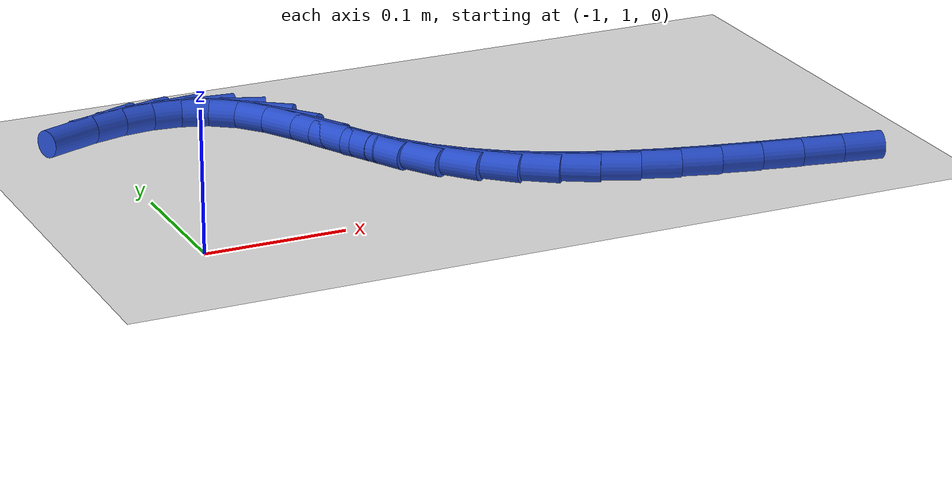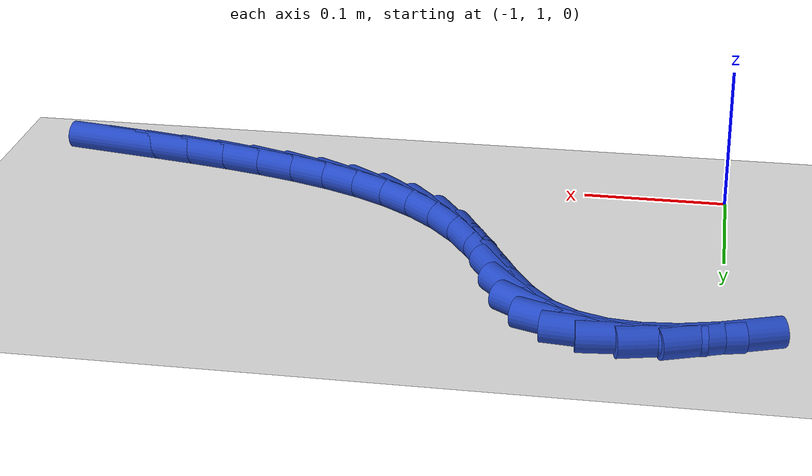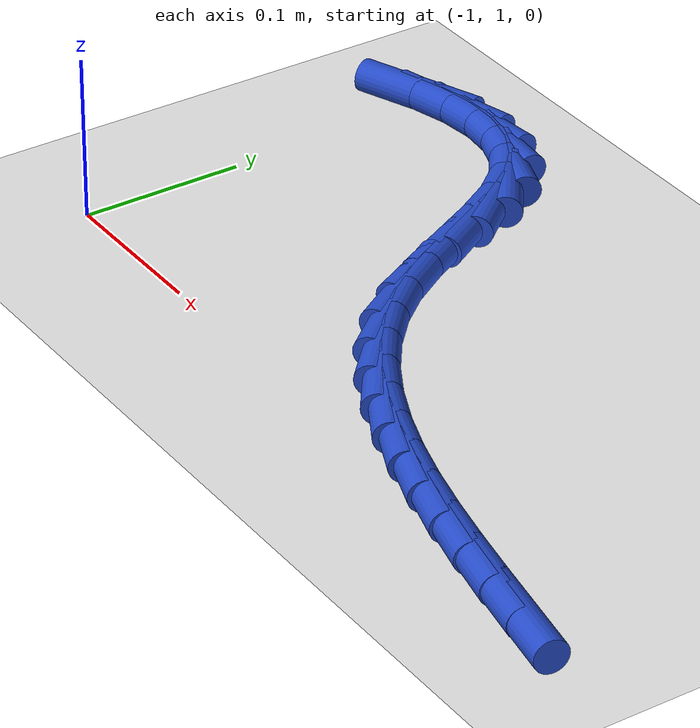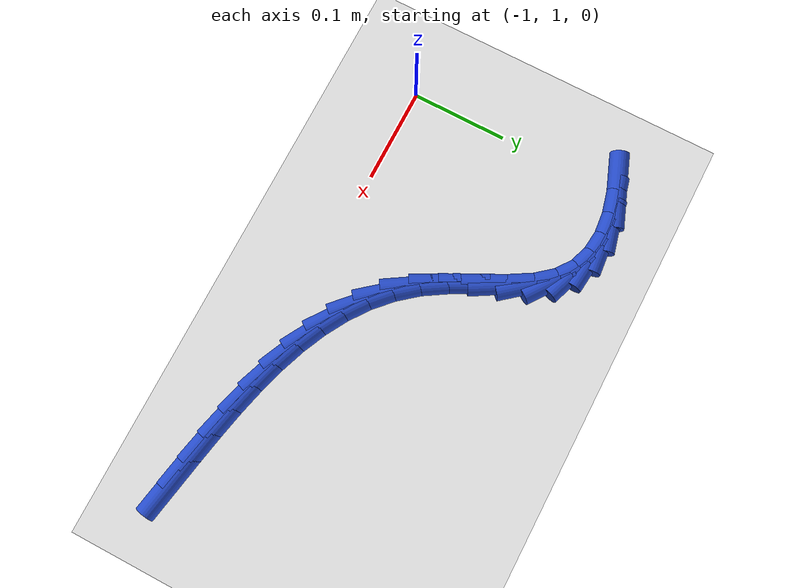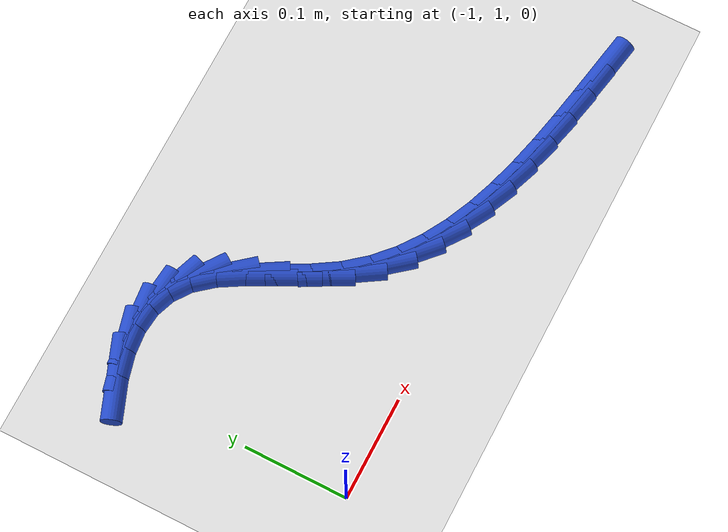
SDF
<sdf version="1.6">
 <world name="default">
  <model name="ground_plane">
   <static>1</static>
   <link name="link">
    <collision name="collision">
     <geometry><plane><normal>0 0 1</normal><size>100 100</size></plane></geometry>
     <surface><friction><ode><mu>100</mu><mu2>50</mu2></ode></friction></surface>
    </collision>
    <visual name="visual">
     <cast_shadows>0</cast_shadows>
     <geometry><plane><normal>0 0 1</normal><size>100 100</size></plane></geometry>
     <material>
      <script><uri>file://media/materials/scripts/gazebo.material</uri><name>Gazebo/WhiteGlow</name></script>
     </material>
    </visual>
   </link>
  </model>
  <model name="line">
   <link name="link_44">
    <pose>-0.5454718366841503 0.9756328690216685 0.01 0 1.57 -0.1798776336098646</pose>
    <collision name="collision">
     <geometry><cylinder><radius>0.01</radius><length>0.08</length></cylinder></geometry>
    </collision>
    <visual name="visual">
     <material>
      <script><name>Gazebo/Blue</name><uri>file://media/materials/scripts/gazebo.material</uri></script>
     </material>
     <geometry><cylinder><radius>0.01</radius><length>0.08</length></cylinder></geometry>
    </visual>
   </link>
   <link name="link_45">
    <pose>-0.5750337213180423 0.9810084941661117 0.01 0 1.57 -0.19022691480345078</pose>
    <collision name="collision">
     <geometry><cylinder><radius>0.01</radius><length>0.08</length></cylinder></geometry>
    </collision>
    <visual name="visual">
     <material>
      <script><name>Gazebo/Blue</name><uri>file://media/materials/scripts/gazebo.material</uri></script>
     </material>
     <geometry><cylinder><radius>0.01</radius><length>0.08</length></cylinder></geometry>
    </visual>
   </link>
   <link name="link_46">
    <pose>-0.6043403427914732 0.9866516352214569 0.01 0 1.57 -0.21177940942751253</pose>
    <collision name="collision">
     <geometry><cylinder><radius>0.01</radius><length>0.08</length></cylinder></geometry>
    </collision>
    <visual name="visual">
     <material>
      <script><name>Gazebo/Blue</name><uri>file://media/materials/scripts/gazebo.material</uri></script>
     </material>
     <geometry><cylinder><radius>0.01</radius><length>0.08</length></cylinder></geometry>
    </visual>
   </link>
   <link name="link_47">
    <pose>-0.6331766086263358 0.9928515304081181 0.01 0 1.57 -0.24525223324633424</pose>
    <collision name="collision">
     <geometry><cylinder><radius>0.01</radius><length>0.08</length></cylinder></geometry>
    </collision>
    <visual name="visual">
     <material>
      <script><name>Gazebo/Blue</name><uri>file://media/materials/scripts/gazebo.material</uri></script>
     </material>
     <geometry><cylinder><radius>0.01</radius><length>0.08</length></cylinder></geometry>
    </visual>
   </link>
   <link name="link_48">
    <pose>-0.6613274263445226 0.9998974179465092 0.01 0 1.57 -0.29165996068379624</pose>
    <collision name="collision">
     <geometry><cylinder><radius>0.01</radius><length>0.08</length></cylinder></geometry>
    </collision>
    <visual name="visual">
     <material>
      <script><name>Gazebo/Blue</name><uri>file://media/materials/scripts/gazebo.material</uri></script>
     </material>
     <geometry><cylinder><radius>0.01</radius><length>0.08</length></cylinder></geometry>
    </visual>
   </link>
   <link name="link_49">
    <pose>-0.6885777034679268 1.0080785360570452 0.01 0 1.57 -0.3522164269146654</pose>
    <collision name="collision">
     <geometry><cylinder><radius>0.01</radius><length>0.08</length></cylinder></geometry>
    </collision>
    <visual name="visual">
     <material>
      <script><name>Gazebo/Blue</name><uri>file://media/materials/scripts/gazebo.material</uri></script>
     </material>
     <geometry><cylinder><radius>0.01</radius><length>0.08</length></cylinder></geometry>
    </visual>
   </link>
   <link name="link_50">
    <pose>-0.7147123475184414 1.0176841229601399 0.01 0 1.57 -0.4281228818178667</pose>
    <collision name="collision">
     <geometry><cylinder><radius>0.01</radius><length>0.08</length></cylinder></geometry>
    </collision>
    <visual name="visual">
     <material>
      <script><name>Gazebo/Blue</name><uri>file://media/materials/scripts/gazebo.material</uri></script>
     </material>
     <geometry><cylinder><radius>0.01</radius><length>0.08</length></cylinder></geometry>
    </visual>
   </link>
   <link name="link_51">
    <pose>-0.7395162660179588 1.0290034168762072 0.01 0 1.57 -0.5201793237297364</pose>
    <collision name="collision">
     <geometry><cylinder><radius>0.01</radius><length>0.08</length></cylinder></geometry>
    </collision>
    <visual name="visual">
     <material>
      <script><name>Gazebo/Blue</name><uri>file://media/materials/scripts/gazebo.material</uri></script>
     </material>
     <geometry><cylinder><radius>0.01</radius><length>0.08</length></cylinder></geometry>
    </visual>
   </link>
   <link name="link_52">
    <pose>-0.7627743664883726 1.0423256560256622 0.01 0 1.57 -0.628190640459535</pose>
    <collision name="collision">
     <geometry><cylinder><radius>0.01</radius><length>0.08</length></cylinder></geometry>
    </collision>
    <visual name="visual">
     <material>
      <script><name>Gazebo/Blue</name><uri>file://media/materials/scripts/gazebo.material</uri></script>
     </material>
     <geometry><cylinder><radius>0.01</radius><length>0.08</length></cylinder></geometry>
    </visual>
   </link>
   <link name="link_53">
    <pose>-0.784271556451575 1.0579400786289188 0.01 0 1.57 -0.7502735110008418</pose>
    <collision name="collision">
     <geometry><cylinder><radius>0.01</radius><length>0.08</length></cylinder></geometry>
    </collision>
    <visual name="visual">
     <material>
      <script><name>Gazebo/Blue</name><uri>file://media/materials/scripts/gazebo.material</uri></script>
     </material>
     <geometry><cylinder><radius>0.01</radius><length>0.08</length></cylinder></geometry>
    </visual>
   </link>
   <link name="link_54">
    <pose>-0.8037927434294592 1.0761359229063914 0.01 0 1.57 -0.8824037765300647</pose>
    <collision name="collision">
     <geometry><cylinder><radius>0.01</radius><length>0.08</length></cylinder></geometry>
    </collision>
    <visual name="visual">
     <material>
      <script><name>Gazebo/Blue</name><uri>file://media/materials/scripts/gazebo.material</uri></script>
     </material>
     <geometry><cylinder><radius>0.01</radius><length>0.08</length></cylinder></geometry>
    </visual>
   </link>
   <link name="link_55">
    <pose>-0.8211228349439181 1.0972024270784941 0.01 0 1.57 -1.0132176458955708</pose>
    <collision name="collision">
     <geometry><cylinder><radius>0.01</radius><length>0.08</length></cylinder></geometry>
    </collision>
    <visual name="visual">
     <material>
      <script><name>Gazebo/Blue</name><uri>file://media/materials/scripts/gazebo.material</uri></script>
     </material>
     <geometry><cylinder><radius>0.01</radius><length>0.08</length></cylinder></geometry>
    </visual>
   </link>
   <link name="link_56">
    <pose>-0.836133880896596 1.1212747318497345 0.01 0 1.57 -1.092108331354725</pose>
    <collision name="collision">
     <geometry><cylinder><radius>0.01</radius><length>0.08</length></cylinder></geometry>
    </collision>
    <visual name="visual">
     <material>
      <script><name>Gazebo/Blue</name><uri>file://media/materials/scripts/gazebo.material</uri></script>
     </material>
     <geometry><cylinder><radius>0.01</radius><length>0.08</length></cylinder></geometry>
    </visual>
   </link>
   <link name="link_57">
    <pose>-0.8495104327564988 1.1470511974102653 0.01 0 1.57 -1.101785781525811</pose>
    <collision name="collision">
     <geometry><cylinder><radius>0.01</radius><length>0.08</length></cylinder></geometry>
    </collision>
    <visual name="visual">
     <material>
      <script><name>Gazebo/Blue</name><uri>file://media/materials/scripts/gazebo.material</uri></script>
     </material>
     <geometry><cylinder><radius>0.01</radius><length>0.08</length></cylinder></geometry>
    </visual>
   </link>
   <link name="link_58">
    <pose>-0.8623794615742008 1.1724478348945604 0.01 0 1.57 -1.038824736902109</pose>
    <collision name="collision">
     <geometry><cylinder><radius>0.01</radius><length>0.08</length></cylinder></geometry>
    </collision>
    <visual name="visual">
     <material>
      <script><name>Gazebo/Blue</name><uri>file://media/materials/scripts/gazebo.material</uri></script>
     </material>
     <geometry><cylinder><radius>0.01</radius><length>0.08</length></cylinder></geometry>
    </visual>
   </link>
   <link name="link_59">
    <pose>-0.8758723774967677 1.195372805597045 0.01 0 1.57 -0.8782950866586984</pose>
    <collision name="collision">
     <geometry><cylinder><radius>0.01</radius><length>0.08</length></cylinder></geometry>
    </collision>
    <visual name="visual">
     <material>
      <script><name>Gazebo/Blue</name><uri>file://media/materials/scripts/gazebo.material</uri></script>
     </material>
     <geometry><cylinder><radius>0.01</radius><length>0.08</length></cylinder></geometry>
    </visual>
   </link>
   <link name="link_60">
    <pose>-0.8911140504372053 1.2137462318572307 0.01 0 1.57 -0.6219325225921754</pose>
    <collision name="collision">
     <geometry><cylinder><radius>0.01</radius><length>0.08</length></cylinder></geometry>
    </collision>
    <visual name="visual">
     <material>
      <script><name>Gazebo/Blue</name><uri>file://media/materials/scripts/gazebo.material</uri></script>
     </material>
     <geometry><cylinder><radius>0.01</radius><length>0.08</length></cylinder></geometry>
    </visual>
   </link>
   <link name="link_61">
    <pose>-0.9087408365223874 1.226381649823152 0.01 0 1.57 -0.3486219513642271</pose>
    <collision name="collision">
     <geometry><cylinder><radius>0.01</radius><length>0.08</length></cylinder></geometry>
    </collision>
    <visual name="visual">
     <material>
      <script><name>Gazebo/Blue</name><uri>file://media/materials/scripts/gazebo.material</uri></script>
     </material>
     <geometry><cylinder><radius>0.01</radius><length>0.08</length></cylinder></geometry>
    </visual>
   </link>
   <link name="link_62">
    <pose>-0.9285707642904768 1.2335891862988424 0.01 0 1.57 -0.1021796450608524</pose>
    <collision name="collision">
     <geometry><cylinder><radius>0.01</radius><length>0.08</length></cylinder></geometry>
    </collision>
    <visual name="visual">
     <material>
      <script><name>Gazebo/Blue</name><uri>file://media/materials/scripts/gazebo.material</uri></script>
     </material>
     <geometry><cylinder><radius>0.01</radius><length>0.08</length></cylinder></geometry>
    </visual>
   </link>
   <link name="link_63">
    <pose>-0.9503438046825492 1.235821722985079 0.01 0 1.57 0.09730299091059869</pose>
    <collision name="collision">
     <geometry><cylinder><radius>0.01</radius><length>0.08</length></cylinder></geometry>
    </collision>
    <visual name="visual">
     <material>
      <script><name>Gazebo/Blue</name><uri>file://media/materials/scripts/gazebo.material</uri></script>
     </material>
     <geometry><cylinder><radius>0.01</radius><length>0.08</length></cylinder></geometry>
    </visual>
   </link>
   <link name="link_64">
    <pose>-0.9737999286396805 1.2335321415826392 0.01 0 1.57 0.25023093979470123</pose>
    <collision name="collision">
     <geometry><cylinder><radius>0.01</radius><length>0.08</length></cylinder></geometry>
    </collision>
    <visual name="visual">
     <material>
      <script><name>Gazebo/Blue</name><uri>file://media/materials/scripts/gazebo.material</uri></script>
     </material>
     <geometry><cylinder><radius>0.01</radius><length>0.08</length></cylinder></geometry>
    </visual>
   </link>
   <link name="link_65">
    <pose>-0.9986791071029464 1.2271733237923006 0.01 0 1.57 0.3657996234086984</pose>
    <collision name="collision">
     <geometry><cylinder><radius>0.01</radius><length>0.08</length></cylinder></geometry>
    </collision>
    <visual name="visual">
     <material>
      <script><name>Gazebo/Blue</name><uri>file://media/materials/scripts/gazebo.material</uri></script>
     </material>
     <geometry><cylinder><radius>0.01</radius><length>0.08</length></cylinder></geometry>
    </visual>
   </link>
  </model>
 </world>
</sdf>
